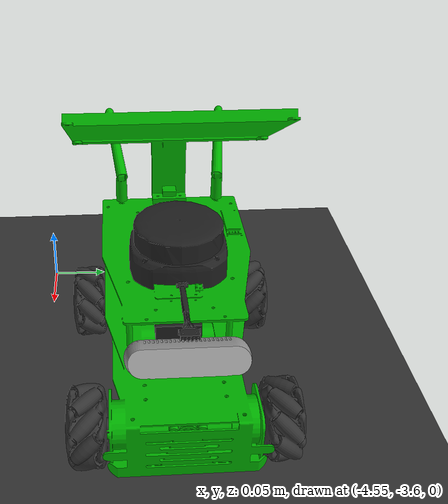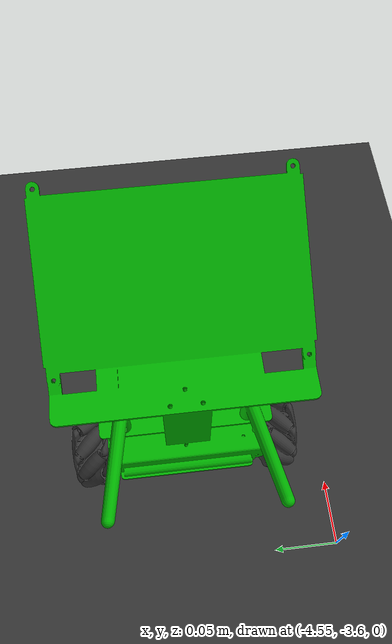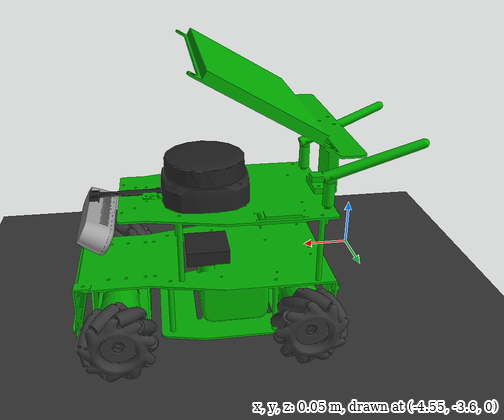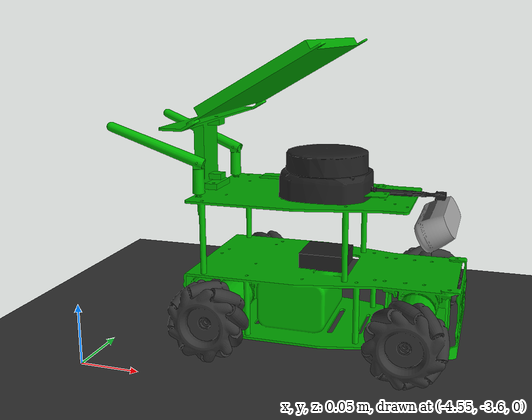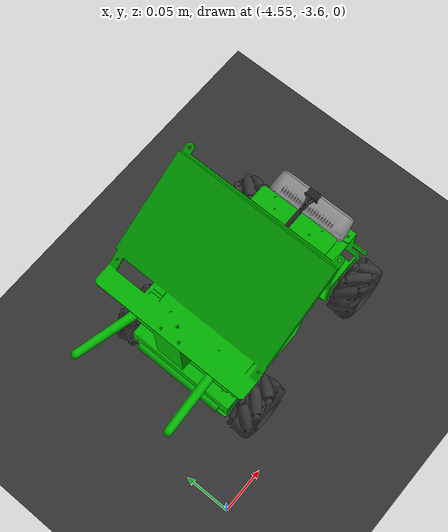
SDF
<sdf version="1.9">
 <world name="default">
  <model name="ground_plane">
   <static>true</static>
   <link name="link">
    <collision name="collision">
     <geometry><plane><normal>0 0 1</normal><size>10 10</size></plane></geometry>
    </collision>
    <visual name="visual">
     <geometry><plane><normal>0 0 1</normal><size>10 10</size></plane></geometry>
     <material>
      <ambient>0.2 0.2 0.2 1</ambient>
      <diffuse>0.2 0.2 0.2 1</diffuse>
      <specular>0.2 0.2 0.2 1</specular>
     </material>
    </visual>
    <inertial>
     <mass>1</mass>
     <inertia><ixx>1</ixx><ixy>0</ixy><ixz>0</ixz><iyy>1</iyy><iyz>0</iyz><izz>1</izz></inertia>
    </inertial>
   </link>
  </model>
  <model name="rosmaster_x3_1">
   <link name="base_footprint">
    <inertial>
     <pose>-0.02762684124386252 0 0.1368573036006547 0 0 0</pose>
     <mass>4.887999999999999</mass>
     <inertia>
      <ixx>0.02688366396477616</ixx>
      <ixy>0</ixy>
      <ixz>0.00075297530245550803</ixz>
      <iyy>0.052121897096815251</iyy>
      <iyz>0</iyz>
      <izz>0.047371939139955743</izz>
     </inertia>
    </inertial>
    <collision name="base_footprint_fixed_joint_lump__base_link_collision">
     <pose>-0.031 0 0.13925 0 0 0</pose>
     <geometry><box><size>0.3 0.1386 0.19725</size></box></geometry>
    </collision>
    <visual name="base_footprint_fixed_joint_lump__base_link_visual">
     <pose>0 0 0.0325 0 0 0</pose>
     <geometry>
      <mesh>
       <scale>1 1 1</scale>
       <uri>file:///home/mo/yahboom_ws/install/yahboom_rosmaster_description/share/yahboom_rosmaster_description/meshes/rosmaster_x3/visual/base_link_X3.STL</uri>
      </mesh>
     </geometry>
     <material><ambient>0 0.7 0 1</ambient><diffuse>0 0.7 0 1</diffuse><specular>0 0.7 0 1</specular></material>
    </visual>
    <visual name="base_footprint_fixed_joint_lump__cam_1_link_visual_1">
     <pose>0.105 0 0.0825 1.070796326794896 -5.551115123125783e-17 1.570796326794896</pose>
     <geometry>
      <mesh>
       <scale>1 1 1</scale>
       <uri>file:///home/mo/yahboom_ws/install/yahboom_rosmaster_description/share/yahboom_rosmaster_description/meshes/intel_realsense/visual/d435.stl</uri>
      </mesh>
     </geometry>
     <material><diffuse>0.625 0.625 0.625 1</diffuse><ambient>0.625 0.625 0.625 1</ambient></material>
    </visual>
    <visual name="base_footprint_fixed_joint_lump__imu_link_visual_2">
     <pose>0 0 0.0385 0 0 0</pose>
     <geometry><box><size>0.03899 0.03785 0.01338</size></box></geometry>
     <material><diffuse>0.125 0.125 0.125 1</diffuse><ambient>0.125 0.125 0.125 1</ambient></material>
    </visual>
    <visual name="base_footprint_fixed_joint_lump__laser_frame_visual_3">
     <pose>0 0 0.115 -1.570796326794896 0 0</pose>
     <geometry>
      <mesh>
       <scale>0.001 0.001 0.001</scale>
       <uri>file:///home/mo/yahboom_ws/install/yahboom_rosmaster_description/share/yahboom_rosmaster_description/meshes/rplidar/rplidar_s2.stl</uri>
      </mesh>
     </geometry>
     <material><diffuse>0.125 0.125 0.125 1</diffuse><ambient>0.125 0.125 0.125 1</ambient></material>
    </visual>
    <sensor name="cam_1" type="rgbd_camera">
     <camera>
      <horizontal_fov>1.5184</horizontal_fov>
      <image><width>424</width><height>240</height></image>
      <clip><near>0.050000000000000003</near><far>1.5</far></clip>
     </camera>
     <always_on>true</always_on>
     <topic>cam_1</topic>
     <update_rate>2</update_rate>
     <visualize>true</visualize>
     <pose>0.105 0 0.0825 0 -0.5 0</pose>
     <gz_frame_id>cam_1_depth_optical_frame</gz_frame_id>
    </sensor>
    <sensor name="imu_sensor" type="imu">
     <topic>imu/data</topic>
     <update_rate>15</update_rate>
     <always_on>true</always_on>
     <visualize>false</visualize>
     <pose>0 0 0.0385 0 -0 0</pose>
     <gz_frame_id>imu_link</gz_frame_id>
    </sensor>
    <sensor name="lidar_sensor" type="gpu_lidar">
     <topic>scan</topic>
     <update_rate>10</update_rate>
     <always_on>true</always_on>
     <visualize>false</visualize>
     <ray>
      <scan>
       <horizontal>
        <samples>720</samples>
        <resolution>1</resolution>
        <min_angle>-3.1415899999999999</min_angle>
        <max_angle>3.1415899999999999</max_angle>
       </horizontal>
       <vertical>
        <samples>1</samples>
        <resolution>1</resolution>
        <min_angle>0</min_angle>
        <max_angle>0</max_angle>
       </vertical>
      </scan>
      <range><min>0.20000000000000001</min><max>30</max><resolution>0.012999999999999999</resolution></range>
     </ray>
     <pose>0 0 0.115 0 -0 0</pose>
     <gz_frame_id>laser_frame</gz_frame_id>
    </sensor>
   </link>
   <joint name="back_left_wheel_joint" type="revolute">
    <pose relative_to="base_footprint">-0.08 0.07450000000000001 0 0 0 0</pose>
    <parent>base_footprint</parent>
    <child>back_left_wheel_link</child>
    <axis>
     <xyz>0 1 0</xyz>
     <limit><lower>-10000000000000000</lower><upper>10000000000000000</upper></limit>
     <dynamics><spring_reference>0</spring_reference><spring_stiffness>0</spring_stiffness></dynamics>
    </axis>
   </joint>
   <link name="back_left_wheel_link">
    <pose relative_to="back_left_wheel_joint">0 0 0 0 0 0</pose>
    <inertial>
     <mass>9.0999999999999996</mass>
     <inertia>
      <ixx>0.0031037900833333328</ixx>
      <ixy>0</ixy>
      <ixz>0</ixz>
      <iyy>0.0048059375000000003</iyy>
      <iyz>0</iyz>
      <izz>0.0031037900833333328</izz>
     </inertia>
    </inertial>
    <collision name="back_left_wheel_link_collision">
     <pose>0 0 0 1.570796326794896 0 0</pose>
     <geometry><cylinder><length>0.0304</length><radius>0.032500000000000001</radius></cylinder></geometry>
    </collision>
    <visual name="back_left_wheel_link_visual">
     <pose>0 0 0 1.570796326794896 0 0</pose>
     <geometry>
      <mesh>
       <scale>1 1 1</scale>
       <uri>file:///home/mo/yahboom_ws/install/yahboom_rosmaster_description/share/yahboom_rosmaster_description/meshes/rosmaster_x3/visual/back_left_wheel_X3.STL</uri>
      </mesh>
     </geometry>
     <material>
      <ambient>0.2 0.2 0.2 1</ambient>
      <diffuse>0.2 0.2 0.2 1</diffuse>
      <specular>0.2 0.2 0.2 1</specular>
      <emissive>0 0 0 0</emissive>
     </material>
    </visual>
    <surface><friction><ode><mu>1.0</mu><mu2>0.0</mu2></ode></friction></surface>
   </link>
   <joint name="back_right_wheel_joint" type="revolute">
    <pose relative_to="base_footprint">-0.08 -0.07450000000000001 0 0 0 0</pose>
    <parent>base_footprint</parent>
    <child>back_right_wheel_link</child>
    <axis>
     <xyz>0 1 0</xyz>
     <limit><lower>-10000000000000000</lower><upper>10000000000000000</upper></limit>
     <dynamics><spring_reference>0</spring_reference><spring_stiffness>0</spring_stiffness></dynamics>
    </axis>
   </joint>
   <link name="back_right_wheel_link">
    <pose relative_to="back_right_wheel_joint">0 0 0 0 0 0</pose>
    <inertial>
     <mass>9.0999999999999996</mass>
     <inertia>
      <ixx>0.0031037900833333328</ixx>
      <ixy>0</ixy>
      <ixz>0</ixz>
      <iyy>0.0048059375000000003</iyy>
      <iyz>0</iyz>
      <izz>0.0031037900833333328</izz>
     </inertia>
    </inertial>
    <collision name="back_right_wheel_link_collision">
     <pose>0 0 0 1.570796326794896 0 0</pose>
     <geometry><cylinder><length>0.0304</length><radius>0.032500000000000001</radius></cylinder></geometry>
    </collision>
    <visual name="back_right_wheel_link_visual">
     <pose>0 0 0 1.570796326794896 0 0</pose>
     <geometry>
      <mesh>
       <scale>1 1 1</scale>
       <uri>file:///home/mo/yahboom_ws/install/yahboom_rosmaster_description/share/yahboom_rosmaster_description/meshes/rosmaster_x3/visual/back_right_wheel_X3.STL</uri>
      </mesh>
     </geometry>
     <material>
      <ambient>0.2 0.2 0.2 1</ambient>
      <diffuse>0.2 0.2 0.2 1</diffuse>
      <specular>0.2 0.2 0.2 1</specular>
      <emissive>0 0 0 0</emissive>
     </material>
    </visual>
    <surface><friction><ode><mu>1.0</mu><mu2>0.0</mu2></ode></friction></surface>
   </link>
   <joint name="front_left_wheel_joint" type="revolute">
    <pose relative_to="base_footprint">0.08 0.07450000000000001 0 0 0 0</pose>
    <parent>base_footprint</parent>
    <child>front_left_wheel_link</child>
    <axis>
     <xyz>0 1 0</xyz>
     <limit><lower>-10000000000000000</lower><upper>10000000000000000</upper></limit>
     <dynamics><spring_reference>0</spring_reference><spring_stiffness>0</spring_stiffness></dynamics>
    </axis>
   </joint>
   <link name="front_left_wheel_link">
    <pose relative_to="front_left_wheel_joint">0 0 0 0 0 0</pose>
    <inertial>
     <mass>9.0999999999999996</mass>
     <inertia>
      <ixx>0.0031037900833333328</ixx>
      <ixy>0</ixy>
      <ixz>0</ixz>
      <iyy>0.0048059375000000003</iyy>
      <iyz>0</iyz>
      <izz>0.0031037900833333328</izz>
     </inertia>
    </inertial>
    <collision name="front_left_wheel_link_collision">
     <pose>0 0 0 1.570796326794896 0 0</pose>
     <geometry><cylinder><length>0.0304</length><radius>0.032500000000000001</radius></cylinder></geometry>
    </collision>
    <visual name="front_left_wheel_link_visual">
     <pose>0 0 0 1.570796326794896 0 0</pose>
     <geometry>
      <mesh>
       <scale>1 1 1</scale>
       <uri>file:///home/mo/yahboom_ws/install/yahboom_rosmaster_description/share/yahboom_rosmaster_description/meshes/rosmaster_x3/visual/front_left_wheel_X3.STL</uri>
      </mesh>
     </geometry>
     <material>
      <ambient>0.2 0.2 0.2 1</ambient>
      <diffuse>0.2 0.2 0.2 1</diffuse>
      <specular>0.2 0.2 0.2 1</specular>
      <emissive>0 0 0 0</emissive>
     </material>
    </visual>
    <surface><friction><ode><mu>1.0</mu><mu2>0.0</mu2></ode></friction></surface>
   </link>
   <joint name="front_right_wheel_joint" type="revolute">
    <pose relative_to="base_footprint">0.08 -0.07450000000000001 0 0 0 0</pose>
    <parent>base_footprint</parent>
    <child>front_right_wheel_link</child>
    <axis>
     <xyz>0 1 0</xyz>
     <limit><lower>-10000000000000000</lower><upper>10000000000000000</upper></limit>
     <dynamics><spring_reference>0</spring_reference><spring_stiffness>0</spring_stiffness></dynamics>
    </axis>
   </joint>
   <link name="front_right_wheel_link">
    <pose relative_to="front_right_wheel_joint">0 0 0 0 0 0</pose>
    <inertial>
     <mass>9.0999999999999996</mass>
     <inertia>
      <ixx>0.0031037900833333328</ixx>
      <ixy>0</ixy>
      <ixz>0</ixz>
      <iyy>0.0048059375000000003</iyy>
      <iyz>0</iyz>
      <izz>0.0031037900833333328</izz>
     </inertia>
    </inertial>
    <collision name="front_right_wheel_link_collision">
     <pose>0 0 0 1.570796326794896 0 0</pose>
     <geometry><cylinder><length>0.0304</length><radius>0.032500000000000001</radius></cylinder></geometry>
    </collision>
    <visual name="front_right_wheel_link_visual">
     <pose>0 0 0 1.570796326794896 0 0</pose>
     <geometry>
      <mesh>
       <scale>1 1 1</scale>
       <uri>file:///home/mo/yahboom_ws/install/yahboom_rosmaster_description/share/yahboom_rosmaster_description/meshes/rosmaster_x3/visual/front_right_wheel_X3.STL</uri>
      </mesh>
     </geometry>
     <material>
      <ambient>0.2 0.2 0.2 1</ambient>
      <diffuse>0.2 0.2 0.2 1</diffuse>
      <specular>0.2 0.2 0.2 1</specular>
      <emissive>0 0 0 0</emissive>
     </material>
    </visual>
    <surface><friction><ode><mu>1.0</mu><mu2>0.0</mu2></ode></friction></surface>
   </link>
   <plugin name="gz::sim::systems::VelocityControl" filename="gz-sim-velocity-control-system">
    <topic>mecanum_drive_controller/cmd_vel</topic>
    <initial_linear>0 0 0</initial_linear>
    <initial_angular>0 0 0</initial_angular>
   </plugin>
   <plugin name="gz_ros2_control::GazeboSimROS2ControlPlugin" filename="gz_ros2_control-system">
    <parameters>/home/mo/yahboom_ws/install/yahboom_rosmaster_description/share/yahboom_rosmaster_description/config/rosmaster_x3/ros2_controllers.yaml</parameters>
    <ros><remapping>/controller_manager/robot_description:=/robot_description</remapping></ros>
   </plugin>
   <frame name="cam_1_color_optical_joint" attached_to="cam_1_color_frame">
    <pose>0 0 0 -1.5708 -0 -1.5708</pose>
   </frame>
   <frame name="cam_1_color_optical_frame" attached_to="cam_1_color_optical_joint"/>
   <frame name="cam_1_color_joint" attached_to="cam_1_link"><pose>0 0.015 0 0 -0 0</pose></frame>
   <frame name="cam_1_color_frame" attached_to="cam_1_color_joint"/>
   <frame name="cam_1_depth_optical_joint" attached_to="cam_1_depth_frame">
    <pose>0 0 0 -1.5708 -0 -1.5708</pose>
   </frame>
   <frame name="cam_1_depth_optical_frame" attached_to="cam_1_depth_optical_joint"/>
   <frame name="cam_1_depth_joint" attached_to="cam_1_link"/>
   <frame name="cam_1_depth_frame" attached_to="cam_1_depth_joint"/>
   <frame name="cam_1_infra1_optical_joint" attached_to="cam_1_infra1_frame">
    <pose>0 0 0 -1.5708 -0 -1.5708</pose>
   </frame>
   <frame name="cam_1_infra1_optical_frame" attached_to="cam_1_infra1_optical_joint"/>
   <frame name="cam_1_infra1_joint" attached_to="cam_1_link"/>
   <frame name="cam_1_infra1_frame" attached_to="cam_1_infra1_joint"/>
   <frame name="cam_1_infra2_optical_joint" attached_to="cam_1_infra2_frame">
    <pose>0 0 0 -1.5708 -0 -1.5708</pose>
   </frame>
   <frame name="cam_1_infra2_optical_frame" attached_to="cam_1_infra2_optical_joint"/>
   <frame name="cam_1_infra2_joint" attached_to="cam_1_link"><pose>0 -0.05 0 0 -0 0</pose></frame>
   <frame name="cam_1_infra2_frame" attached_to="cam_1_infra2_joint"/>
   <frame name="cam_1_joint" attached_to="base_link"><pose>0.105 0 0.05 0 -0.5 0</pose></frame>
   <frame name="cam_1_link" attached_to="cam_1_joint"/>
   <frame name="imu_joint" attached_to="base_link"><pose>0 0 0.006 0 -0 0</pose></frame>
   <frame name="imu_link" attached_to="imu_joint"/>
   <frame name="laser_frame_joint" attached_to="base_link"><pose>0 0 0.0825 0 -0 0</pose></frame>
   <frame name="laser_frame" attached_to="laser_frame_joint"/>
   <frame name="base_joint" attached_to="base_footprint"><pose>0 0 0.0325 0 -0 0</pose></frame>
   <frame name="base_link" attached_to="base_joint"/>
   <pose>-4.37655 -3.48551 0.032499 0 -0 0</pose>
   <static>false</static>
  </model>
 </world>
</sdf>
